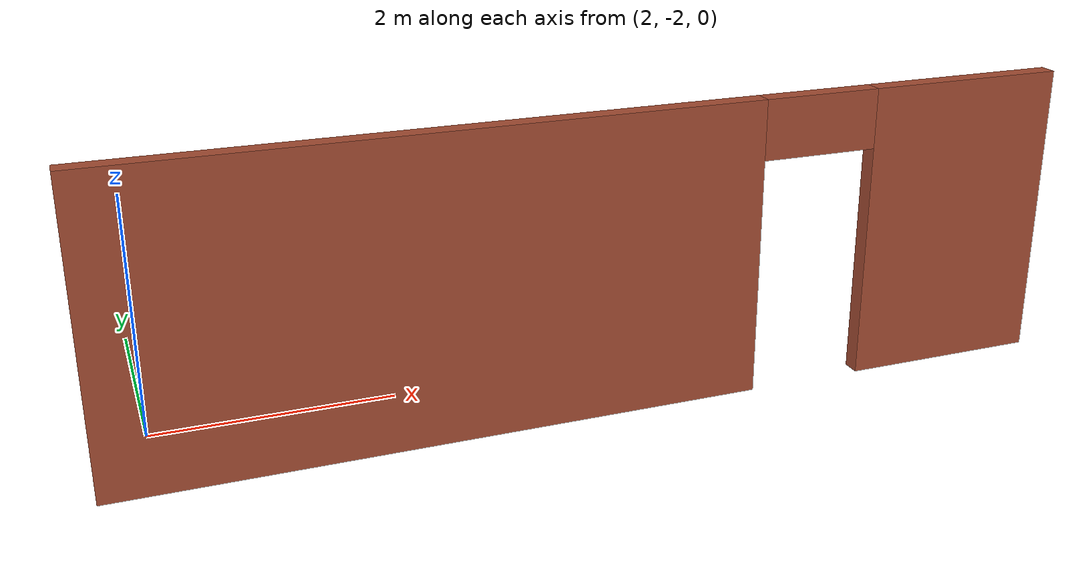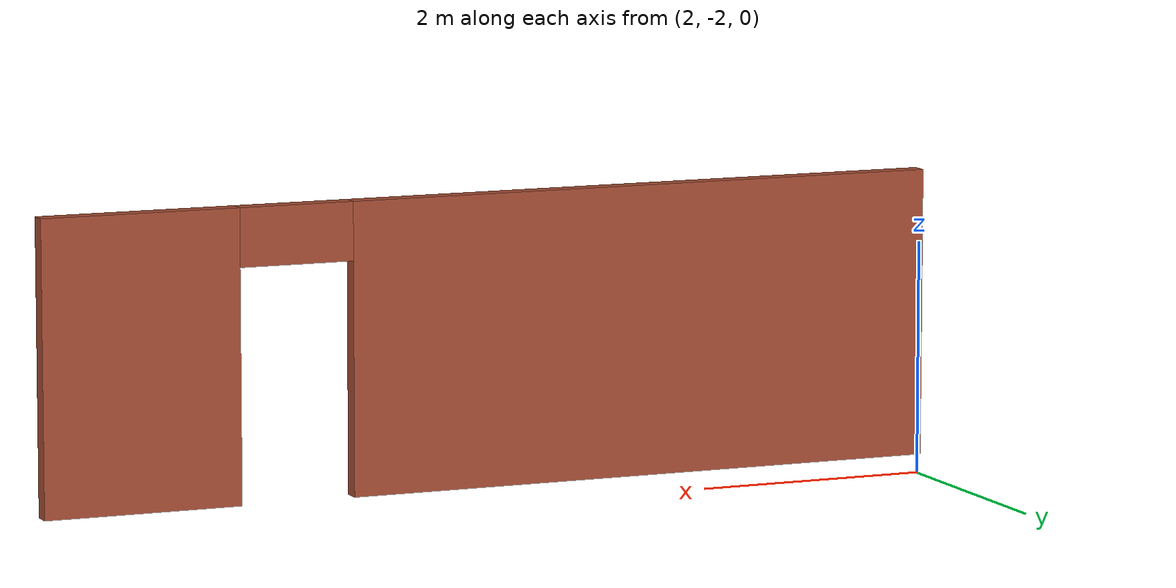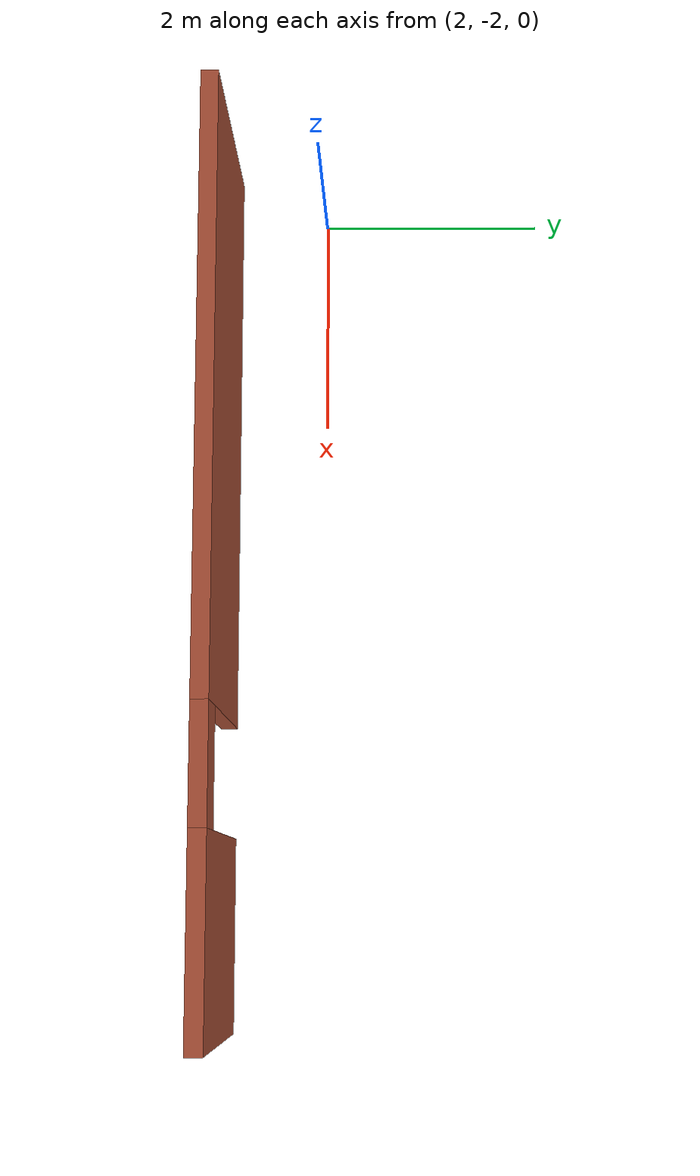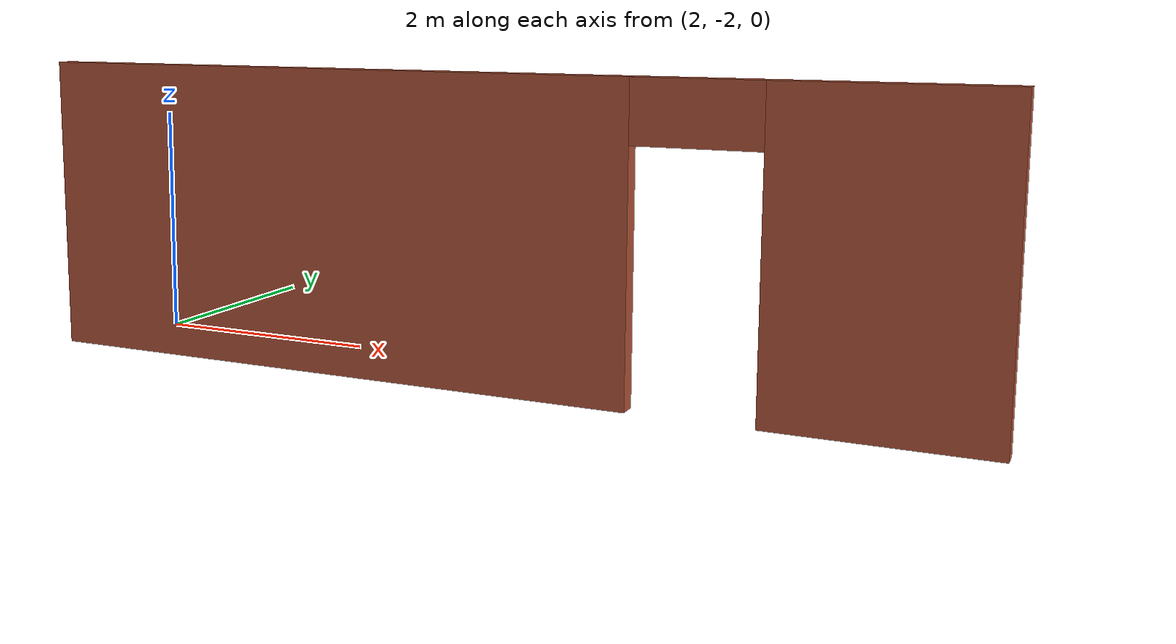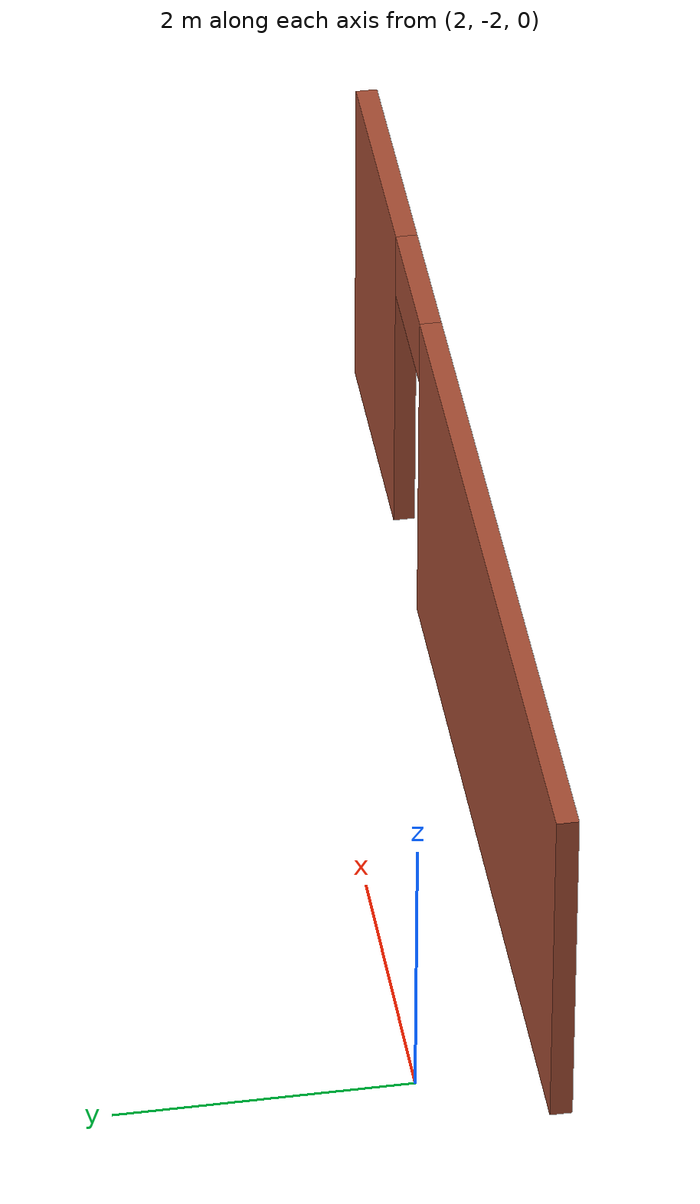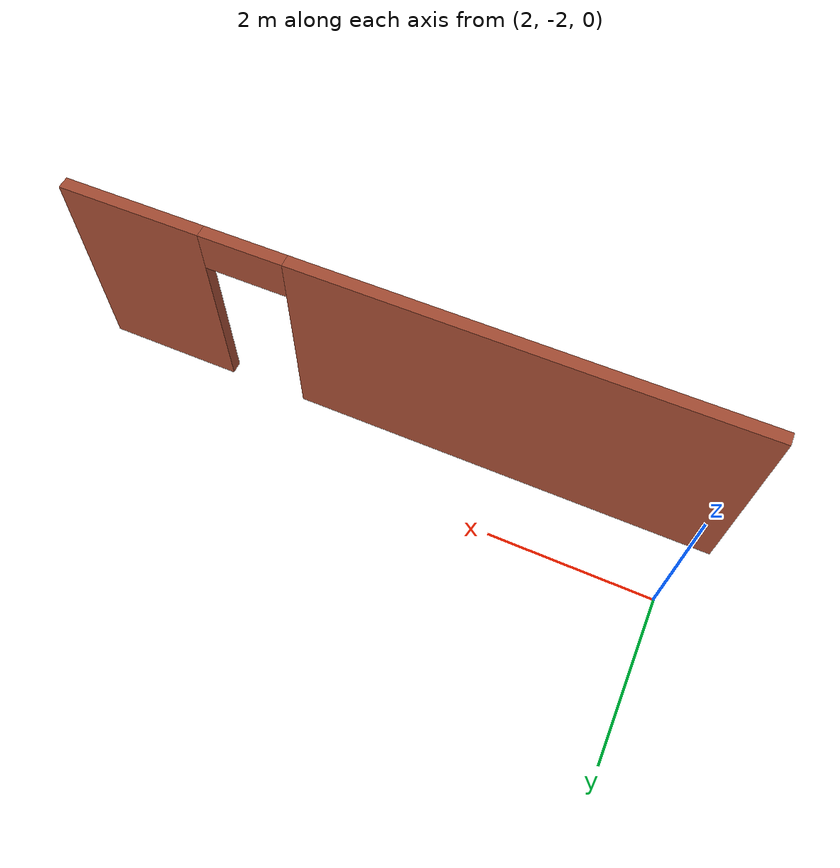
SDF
<?xml version='1.0'?>
<sdf version='1.6'>
  <model name='Wall'>
    <pose frame=''>5.565 -2.89 0 0 -0 0</pose>
    <link name='Wall_0'>
      <pose frame=''>-0 0 0 0 -0 0</pose>
      <visual name='Wall_0_Visual_0'>
        <pose frame=''>-1.36051 0 1.25 0 -0 0</pose>
        <geometry>
          <box>
            <size>5.27898 0.15 2.5</size>
          </box>
        </geometry>
        <material>
          <script>
            <uri>file://media/materials/scripts/gazebo.material</uri>
            <name>Gazebo/Bricks</name>
          </script>
          <ambient>1 1 1 1</ambient>
        </material>
        <meta>
          <layer>0</layer>
        </meta>
      </visual>
      <collision name='Wall_0_Collision_0'>
        <geometry>
          <box>
            <size>5.27898 0.15 2.5</size>
          </box>
        </geometry>
        <pose frame=''>-1.36051 0 1.25 0 -0 0</pose>
      </collision>
      <visual name='Wall_0_Visual_1'>
        <pose frame=''>3.13949 0 1.25 0 -0 0</pose>
        <geometry>
          <box>
            <size>1.72102 0.15 2.5</size>
          </box>
        </geometry>
        <material>
          <script>
            <uri>file://media/materials/scripts/gazebo.material</uri>
            <name>Gazebo/Bricks</name>
          </script>
          <ambient>1 1 1 1</ambient>
        </material>
        <meta>
          <layer>0</layer>
        </meta>
      </visual>
      <collision name='Wall_0_Collision_1'>
        <geometry>
          <box>
            <size>1.72102 0.15 2.5</size>
          </box>
        </geometry>
        <pose frame=''>3.13949 0 1.25 0 -0 0</pose>
      </collision>
      <visual name='Wall_0_Visual_2'>
        <pose frame=''>1.77898 0 2.25 0 -0 0</pose>
        <geometry>
          <box>
            <size>1 0.15 0.5</size>
          </box>
        </geometry>
        <material>
          <script>
            <uri>file://media/materials/scripts/gazebo.material</uri>
            <name>Gazebo/Bricks</name>
          </script>
          <ambient>1 1 1 1</ambient>
        </material>
        <meta>
          <layer>0</layer>
        </meta>
      </visual>
      <collision name='Wall_0_Collision_2'>
        <geometry>
          <box>
            <size>1 0.15 0.5</size>
          </box>
        </geometry>
        <pose frame=''>1.77898 0 2.25 0 -0 0</pose>
      </collision>
    </link>
    <static>1</static>
  </model>
</sdf>
